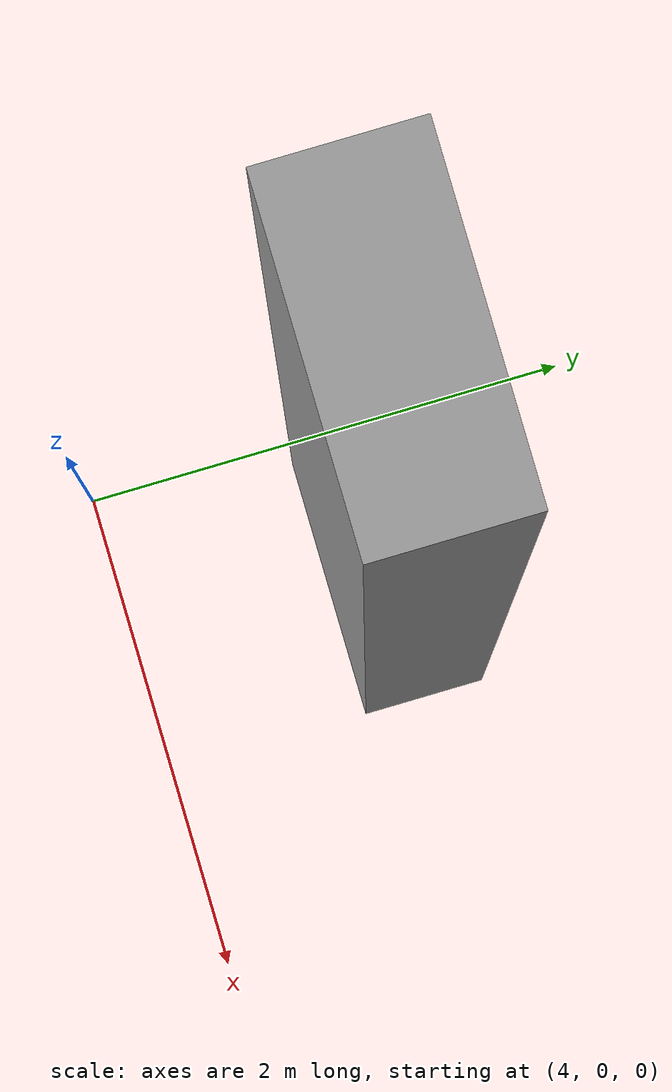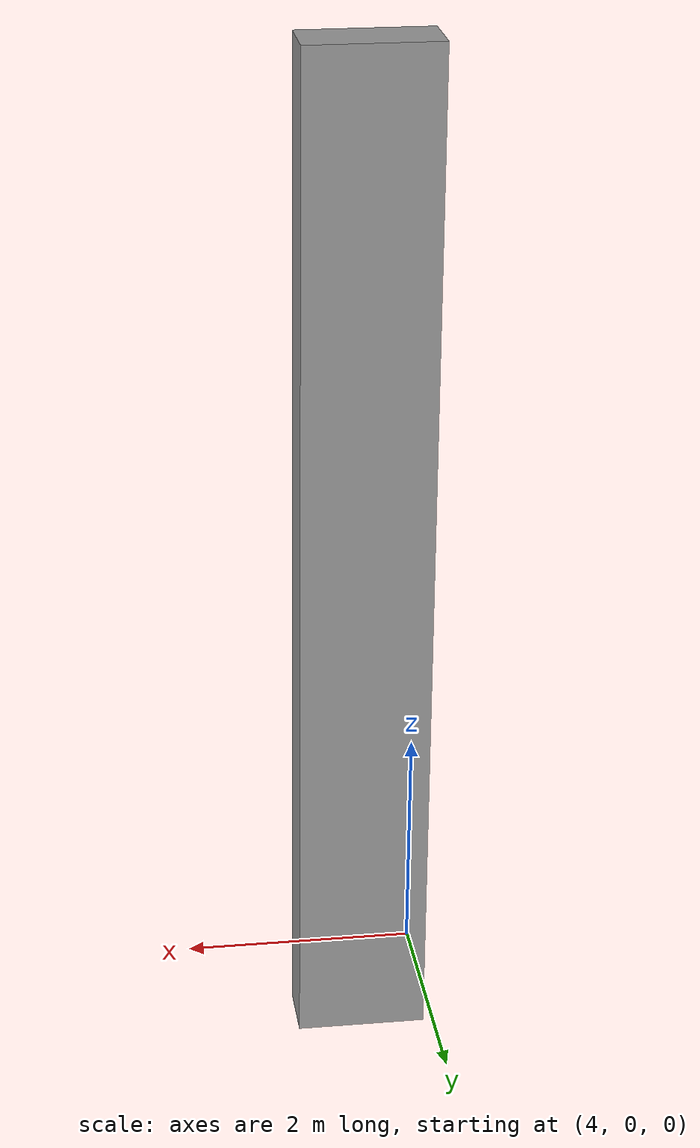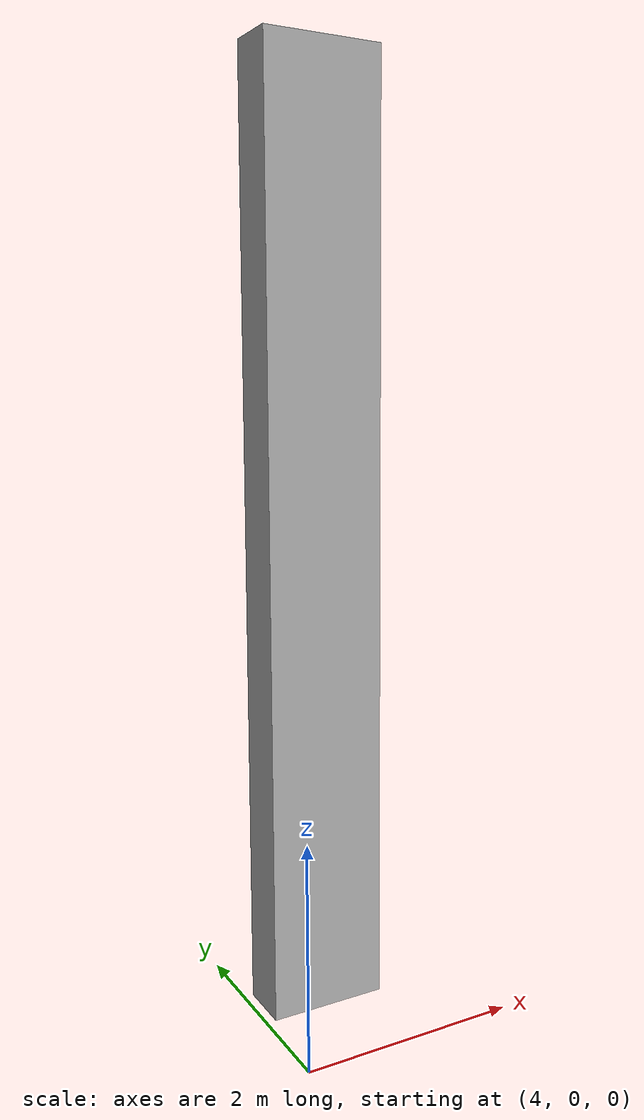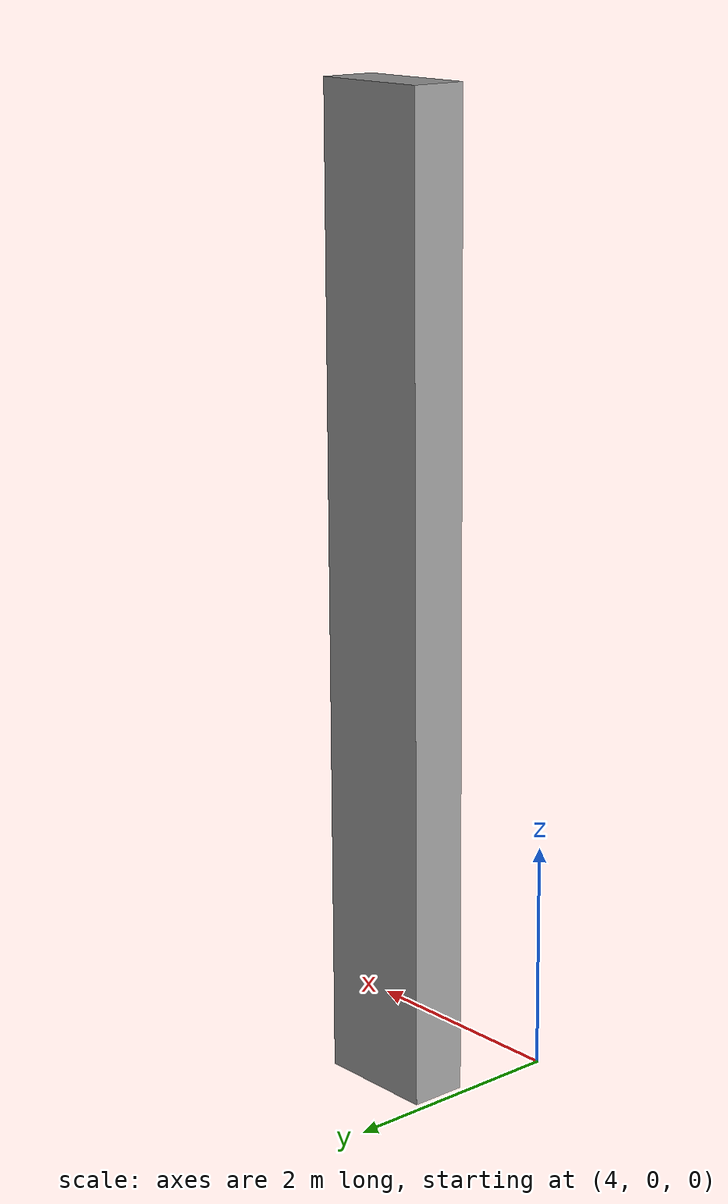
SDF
<?xml version='1.0'?>
<sdf version='1.6'>
  <model name='chair'>
    <pose frame=''>4.626 1.087 0 0 -0 0</pose>
    <link name='Wall_1'>
      <collision name='Wall_1_Collision'>
        <geometry>
          <box>
            <size>1.08 0.5 8.5</size>
          </box>
        </geometry>
        <pose frame=''>0 0 4.25 0 -0 0</pose>
      </collision>
      <visual name='Wall_1_Visual'>
        <pose frame=''>0 0 4.25 0 -0 0</pose>
        <geometry>
          <box>
            <size>1.08 0.5 8.5</size>
          </box>
        </geometry>
        <material>
          <script>
            <uri>file://media/materials/scripts/gazebo.material</uri>
            <name>Gazebo/Grey</name>
          </script>
          <ambient>1 1 1 1</ambient>
        </material>
      </visual>
      <pose frame=''>0 0 0 0 -0 3.14159</pose>
    </link>
    <static>1</static>
  </model>
</sdf>
